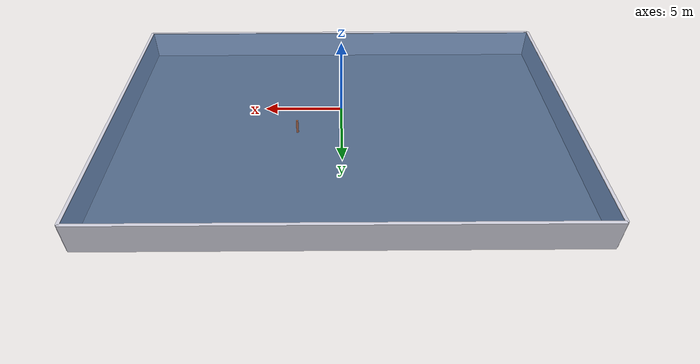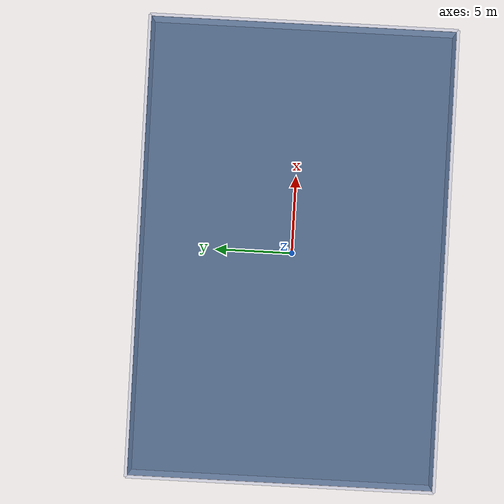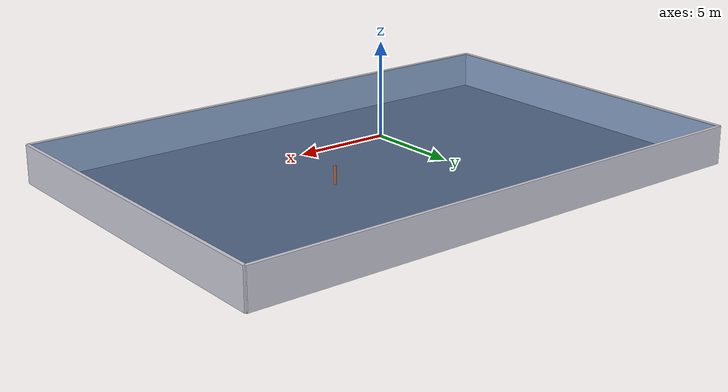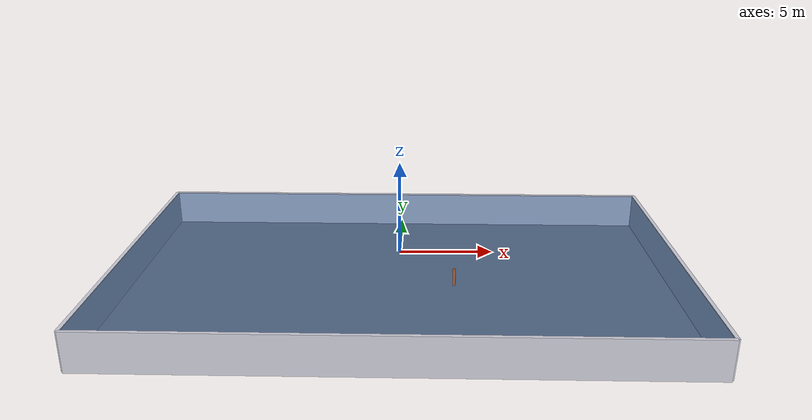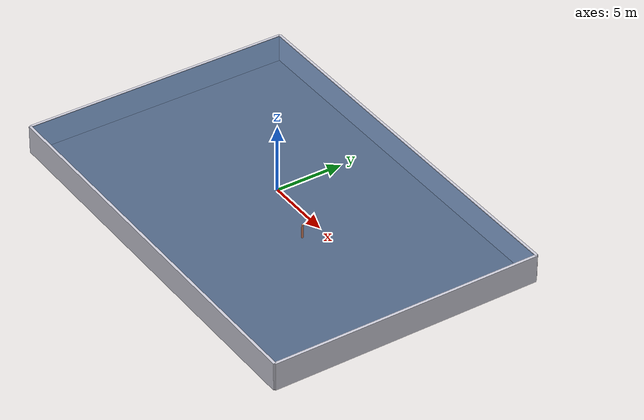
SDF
<?xml version="1.0"?>
<!-- Auto-generated by scripts/generate_worlds.py — do not edit by hand. -->
<sdf version="1.9">
  <world name="marv_task_circle_marker_simple">
    <scene>
      <ambient>0.01 0.01 0.01 1.0</ambient>
      <background>0.05 0.08 0.15 1.0</background>
      <shadows>true</shadows>
    </scene>
    <physics name="1ms" type="ignored">
      <max_step_size>0.001</max_step_size>
      <real_time_factor>1.0</real_time_factor>
    </physics>
    <plugin filename="gz-sim-physics-system" name="gz::sim::systems::Physics"/>
    <plugin filename="gz-sim-user-commands-system" name="gz::sim::systems::UserCommands"/>
    <plugin filename="gz-sim-scene-broadcaster-system" name="gz::sim::systems::SceneBroadcaster"/>
    <plugin filename="gz-sim-sensors-system" name="gz::sim::systems::Sensors">
      <render_engine>ogre2</render_engine>
    </plugin>
    <!-- Required for ArduPilotPlugin JSON (imu_sensor -> imuMsgValid). -->
    <plugin filename="gz-sim-imu-system" name="gz::sim::systems::Imu"/>
    <spherical_coordinates>
      <surface_model>EARTH_WGS84</surface_model>
      <world_frame_orientation>ENU</world_frame_orientation>
      <latitude_deg>1.309562</latitude_deg>
      <longitude_deg>103.7745783</longitude_deg>
      <elevation>0.0</elevation>
      <heading_deg>0.0</heading_deg>
    </spherical_coordinates>
    <light type="directional" name="sun1">
      <pose>50 0 150 0 0 0</pose>
      <diffuse>1 1 1 1</diffuse>
      <specular>0.1 0.1 0.1 1</specular>
      <direction>0.3 0.3 -1</direction>
      <cast_shadows>false</cast_shadows>
    </light>
    <light type="directional" name="sun_diffuse">
      <pose>-50 0 -150 0 0 0</pose>
      <diffuse>0.6 0.6 0.6 1</diffuse>
      <direction>-0.3 -0.3 -1</direction>
      <cast_shadows>false</cast_shadows>
    </light>
    <!-- circle_marker fallback. -->
    <include>
      <name>pool</name>
      <uri>model://marv_pool</uri>
      <pose>0 0 0 0 0 0</pose>
    </include>
    <include>
      <name>marker</name>
      <uri>model://marv_yellow_pole</uri>
      <pose>3 0 -1 0 0 0</pose>
    </include>

    <plugin filename="gz-sim-buoyancy-system" name="gz::sim::systems::Buoyancy">
      <graded_buoyancy>
        <default_density>1000</default_density>
        <density_change>
          <above_depth>0</above_depth>
          <density>1</density>
        </density_change>
      </graded_buoyancy>
    </plugin>
  </world>
</sdf>

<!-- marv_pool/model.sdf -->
<sdf version="1.9">
  <model name="marv_pool">
    <static>true</static>
    <link name="link">
      <visual name="floor">
        <pose>0 0 -2.05 0 0 0</pose>
        <geometry>
          <box>
            <size>30 20 0.1</size>
          </box>
        </geometry>
        <material>
          <ambient>0.35 0.35 0.38 1</ambient>
          <diffuse>0.45 0.45 0.48 1</diffuse>
        </material>
      </visual>
      <collision name="floor_collision">
        <pose>0 0 -2.05 0 0 0</pose>
        <geometry>
          <box>
            <size>30 20 0.1</size>
          </box>
        </geometry>
      </collision>

      <visual name="water_surface">
        <pose>0 0 0 0 0 0</pose>
        <geometry>
          <box>
            <size>30 20 0.02</size>
          </box>
        </geometry>
        <material>
          <ambient>0.05 0.25 0.55 0.35</ambient>
          <diffuse>0.1 0.35 0.65 0.35</diffuse>
        </material>
      </visual>

      <!-- Pool walls -->
      <visual name="wall_n">
        <pose>0 10  -1 0 0 0</pose>
        <geometry><box><size>30 0.2 2.1</size></box></geometry>
        <material><ambient>0.7 0.7 0.75 1</ambient><diffuse>0.8 0.8 0.85 1</diffuse></material>
      </visual>
      <collision name="wall_n"><pose>0 10 -1 0 0 0</pose><geometry><box><size>30 0.2 2.1</size></box></geometry></collision>
      <visual name="wall_s">
        <pose>0 -10 -1 0 0 0</pose>
        <geometry><box><size>30 0.2 2.1</size></box></geometry>
        <material><ambient>0.7 0.7 0.75 1</ambient><diffuse>0.8 0.8 0.85 1</diffuse></material>
      </visual>
      <collision name="wall_s"><pose>0 -10 -1 0 0 0</pose><geometry><box><size>30 0.2 2.1</size></box></geometry></collision>
      <visual name="wall_e">
        <pose>15 0 -1 0 0 0</pose>
        <geometry><box><size>0.2 20 2.1</size></box></geometry>
        <material><ambient>0.7 0.7 0.75 1</ambient><diffuse>0.8 0.8 0.85 1</diffuse></material>
      </visual>
      <collision name="wall_e"><pose>15 0 -1 0 0 0</pose><geometry><box><size>0.2 20 2.1</size></box></geometry></collision>
      <visual name="wall_w">
        <pose>-15 0 -1 0 0 0</pose>
        <geometry><box><size>0.2 20 2.1</size></box></geometry>
        <material><ambient>0.7 0.7 0.75 1</ambient><diffuse>0.8 0.8 0.85 1</diffuse></material>
      </visual>
      <collision name="wall_w"><pose>-15 0 -1 0 0 0</pose><geometry><box><size>0.2 20 2.1</size></box></geometry></collision>
    </link>
  </model>
</sdf>

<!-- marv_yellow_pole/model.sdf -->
<sdf version="1.9">
  <model name="marv_yellow_pole">
    <static>true</static>
    <link name="link">
      <visual name="pole">
        <pose>0 0 -1.05 0 0 0</pose>
        <geometry>
          <cylinder>
            <radius>0.08</radius>
            <length>2.1</length>
          </cylinder>
        </geometry>
        <material>
          <!-- Rustoleum Neon Orange (fluorescent) -->
          <ambient>0.95 0.32 0.0 1</ambient>
          <diffuse>1.0 0.40 0.0 1</diffuse>
          <specular>0.2 0.2 0.2 1</specular>
          <emissive>0.35 0.10 0.0 1</emissive>
        </material>
      </visual>
      <collision name="pole_collision">
        <pose>0 0 -1.05 0 0 0</pose>
        <geometry>
          <cylinder>
            <radius>0.08</radius>
            <length>2.1</length>
          </cylinder>
        </geometry>
      </collision>
    </link>
  </model>
</sdf>
